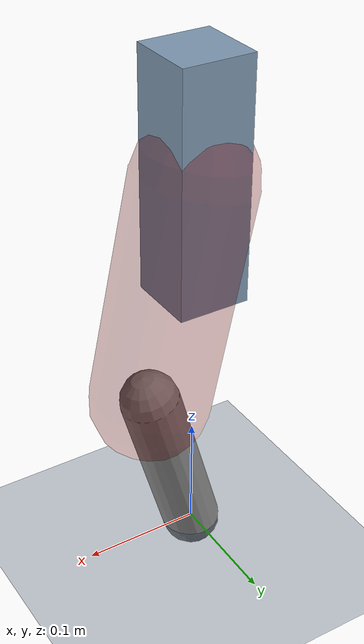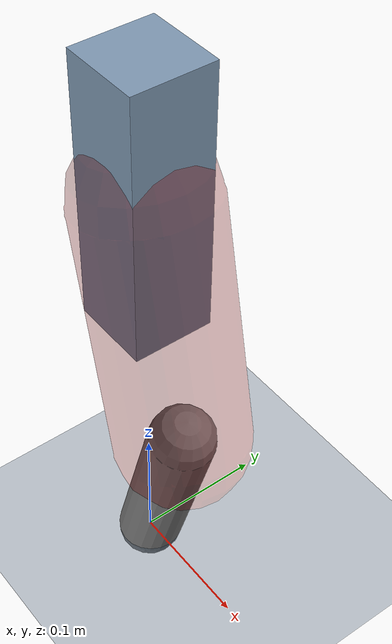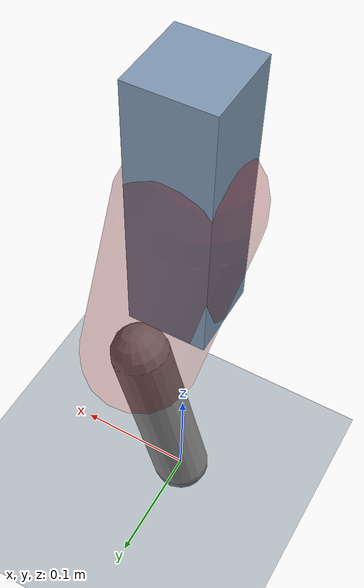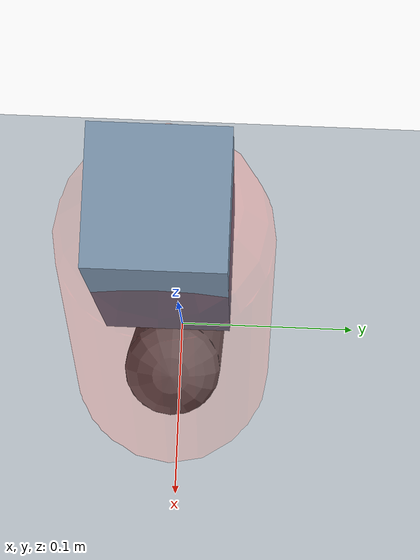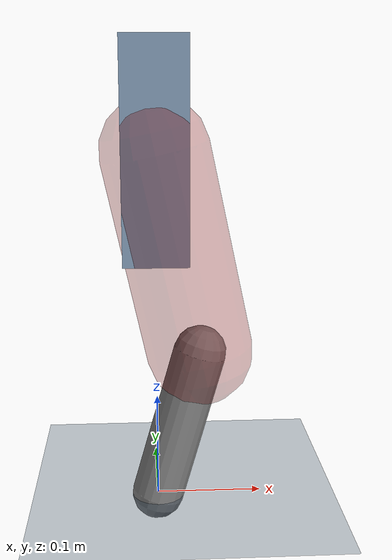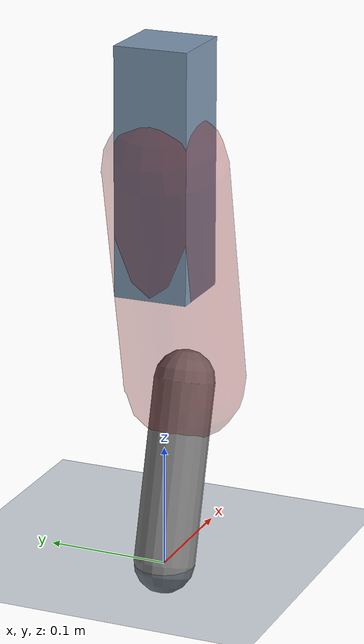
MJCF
<mujoco model="Hopper2D">
	<compiler inertiafromgeom="true" angle="radian" />
	<option timestep="0.001" integrator="implicit" cone="elliptic" solver="Newton" tolerance="1e-10" />

	<default>
		<geom contype="1" conaffinity="1" condim="3" friction="2 0.005 0.0001" solref="0.005 1" />
		<joint limited="true" damping="0.1" />
	</default>

	<asset>
		<texture name="skybox" type="skybox" builtin="gradient" rgb1=".4 .6 .8" rgb2="0 0 0" width="800" height="800" />
		<texture name="grid" type="2d" builtin="checker" rgb1=".1 .2 .3" rgb2=".2 .3 .4" width="300" height="300" mark="edge" markrgb=".2 .3 .4" />
		<material name="ground" texture="grid" texrepeat="1 1" texuniform="true" reflectance="0.1" />
		<material name="leg" rgba="0.5 0.6 0.7 1" />
	</asset>

	<worldbody>

		<geom name="floor" type="plane" size="5 5 0.25" material="ground" />

		<light directional="false" diffuse="0.8 0.8 0.8" specular="0.3 0.3 0.3" pos="0 0 2" dir="0 0 -1" />
		<light mode="targetbodycom" target="base" directional="false" diffuse="0.8 0.8 0.8" specular="0.3 0.3 0.3" pos="0 0 2" dir="0 0 -1" />

		<camera name="fixed" pos="0 -2 1" xyaxes="1 0 0 0 0 1" />
		<camera name="tracking" mode="trackcom" pos="0 -3 1" />

		<body name="root" pos="0 0 0.3326035555927733">
			<joint name="slide_x" type="slide" axis="1 0 0" range="-100 100" />
			<joint name="slide_z" type="slide" axis="0 0 1" range="0 10" />

			<body name="base" pos="0 0 0">
				<geom name="torso" type="box" size="0.03 0.03 0.1" mass="2.379" material="leg" />

				<body name="link1" pos="0 0 0" euler="0 1.3576023456815234 0">
					<joint type="hinge" axis="0 -1 0" pos="0 0 0" name="hinge1" limited="true" range="-3.14 3.14" stiffness="0" damping="0.1" />
					<geom name="thigh" type="capsule" fromto="0 0 0 0.19258498488888476 0 0" size="0.05" rgba="0.5 0 0 0.3" mass="0.7113039637333234" />

					<body name="link2" pos="0.19258498488888476 0 0" euler="0 0.48826709947135105 0">
						<joint type="hinge" axis="0 -1 0" pos="0 0 0" name="hinge2" limited="true" range="-3.14 3.14" stiffness="0" damping="0.1" />
						<geom name="shank" type="capsule" fromto="0 0 0 0.1500185707038886 0 0" size="0.025" mass="0.35771671363349977" />

					</body>
				</body>
			</body>
		</body>
	</worldbody>

	<actuator>
		<motor name="torque1" joint="hinge1" ctrlrange="-29.906139493026384 29.906139493026384" ctrllimited="true" gear="1" />
		<motor name="torque2" joint="hinge2" ctrlrange="-20.21457687306 20.21457687306" ctrllimited="true" gear="1" />
	</actuator>
</mujoco>
